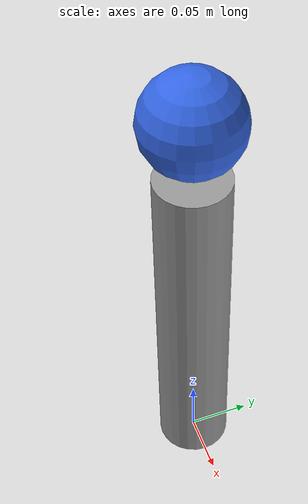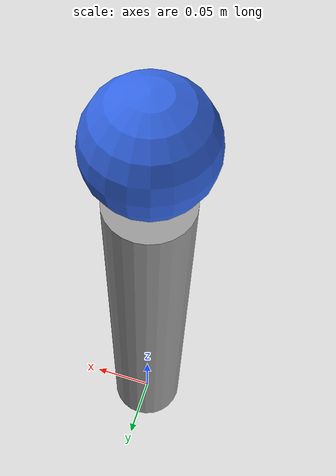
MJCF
<mujoco model="mini_mjcf_chain">
  <compiler angle="radian" autolimits="true"/>

  <worldbody>
    <body name="base_link" pos="0 0 0.15">
      <geom type="cylinder" name="base_cylinder" size="0.03 0.15"
        rgba="0.6 0.6 0.6 1" density="700"/>
    </body>
    <body name="tool_link" pos="0 0 0.35">
      <joint name="tool_joint" type="hinge" axis="0 1 0"
        range="-1.57 1.57" damping="0.1"/>
      <geom type="sphere" name="tool_sphere" size="0.04"
        rgba="0.2 0.4 0.9 1" density="300"/>
    </body>
  </worldbody>
</mujoco>
